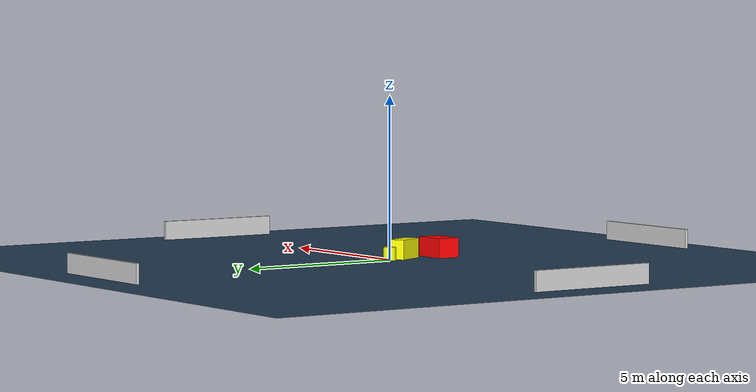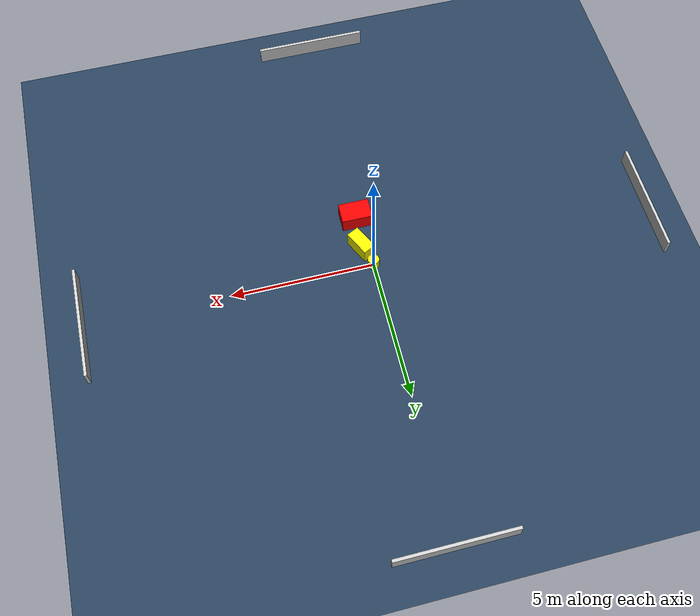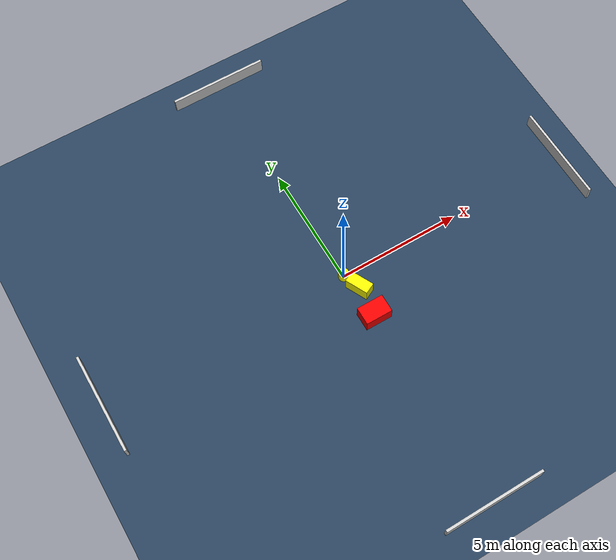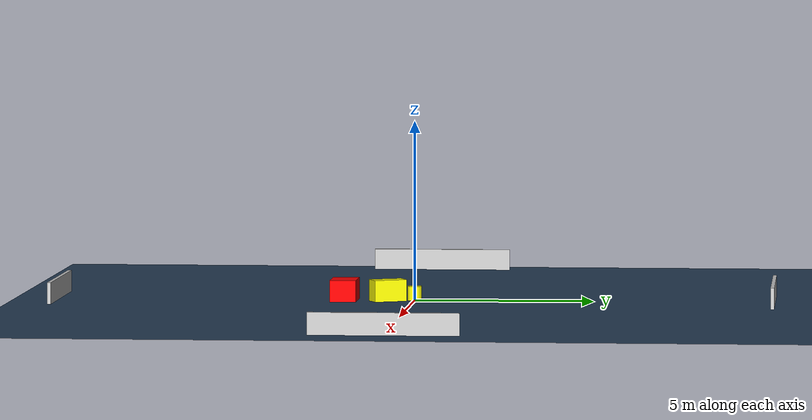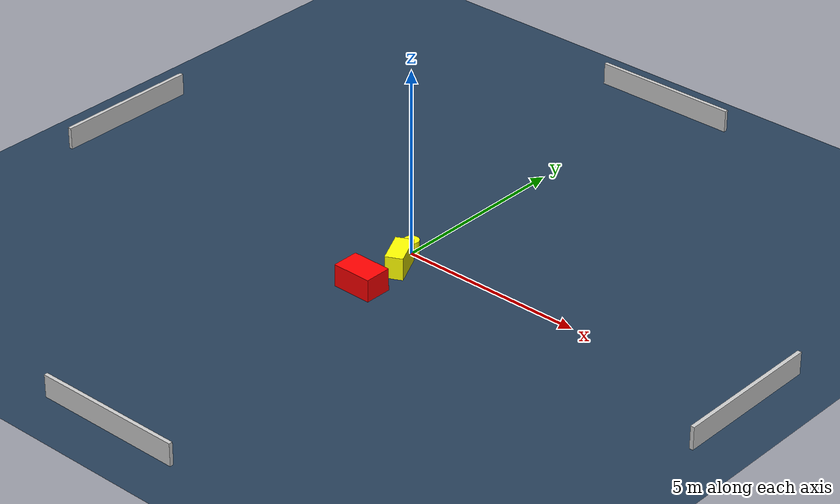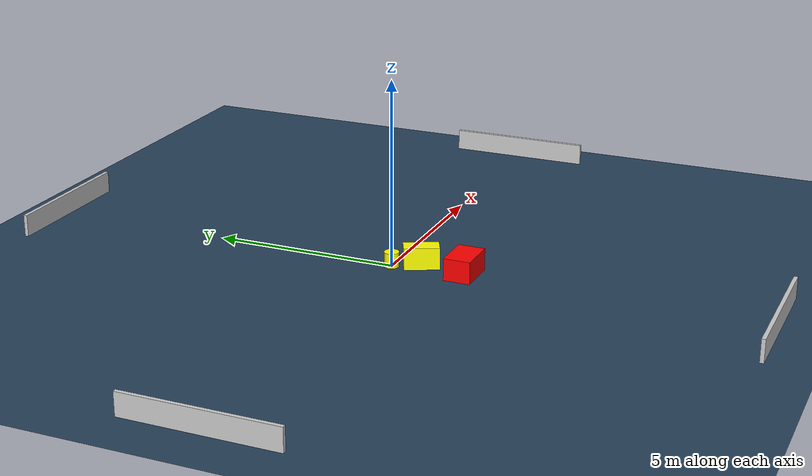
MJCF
<?xml version="1.0" ?>
<mujoco model="generated_environment">
  <option timestep="0.01" integrator="RK4" cone="elliptic"/>
  <default>
    <geom density="1"/>
  </default>
  <asset>
    <texture builtin="gradient" height="3072" name="skybox" rgb1="0.3 0.5 0.7" rgb2="0 0 0" type="skybox" width="512"/>
    <texture builtin="checker" height="300" name="groundplane" rgb1="0.2 0.3 0.4" rgb2="0.1 0.2 0.3" type="2d" width="300"/>
    <material name="groundplane" reflectance="0.2" texrepeat="5 5" texture="groundplane"/>
  </asset>
  <worldbody>
    <light dir="0 0 -1" directional="true" pos="0 0 1.5"/>
    <geom condim="3" friction="0.5 0.005 0.001" material="groundplane" name="floor" pos="0 0 0" size="0 0 0.05" type="plane"/>
    <body name="walls">
      <geom name="wall_1" condim="4" pos="-10.0 0.0 0.3" rgba="0.800000011920929 0.800000011920929 0.800000011920929 1.0" size="0.05 2.0 0.3" type="box"/>
      <geom name="wall_2" condim="4" pos="10.0 0.0 0.3" rgba="0.800000011920929 0.800000011920929 0.800000011920929 1.0" size="0.05 2.0 0.3" type="box"/>
      <geom name="wall_3" condim="4" pos="0.0 -10.0 0.3" rgba="0.800000011920929 0.800000011920929 0.800000011920929 1.0" size="2.0 0.05 0.3" type="box"/>
      <geom name="wall_4" condim="4" pos="0.0 10.0 0.3" rgba="0.800000011920929 0.800000011920929 0.800000011920929 1.0" size="2.0 0.05 0.3" type="box"/>
    </body>
    <body name="robot">
      <joint name="joint_x" type="slide" pos="0 0 0" axis="1 0 0"/>
      <joint name="joint_y" type="slide" pos="0 0 0" axis="0 1 0"/>
      <geom name="robot" type="cylinder" pos="0.0 0.0 0.2" size="0.2 0.2 0.0" mass="5.0" friction="1.0 0.005 0.0001" condim="4" rgba="1.0 1.0 0.0 1.0"/>
    </body>
    <body name="obstacle_1_movable">
      <geom name="obstacle_1_movable" condim="4" pos="0.25605419081101455 -0.7243432001626392 0.3" euler="0 0 26.010393716883627" friction="0.0 0.005 0.001" rgba="1.0 1.0 0.0 1.0" size="0.22965021175723582 0.47081720437509195 0.3" type="box" mass="0.1"/>
      <joint type="free"/>
    </body>
    <body name="obstacle_2_static">
      <geom name="obstacle_2_static" condim="4" pos="0.1625635100713502 -1.950263265309567 0.3" euler="0 0 89.57631538829135" friction="0.0 0.005 0.001" rgba="1.0 0.0 0.0 1.0" size="0.36229819207413516 0.5366389234415261 0.3" type="box"/>
    </body>
  </worldbody>
  <actuator>
    <motor name="actuator_x" joint="joint_x" gear="1" ctrlrange="-1 1"/>
    <motor name="actuator_y" joint="joint_y" gear="1" ctrlrange="-1 1"/>
  </actuator>
</mujoco>
